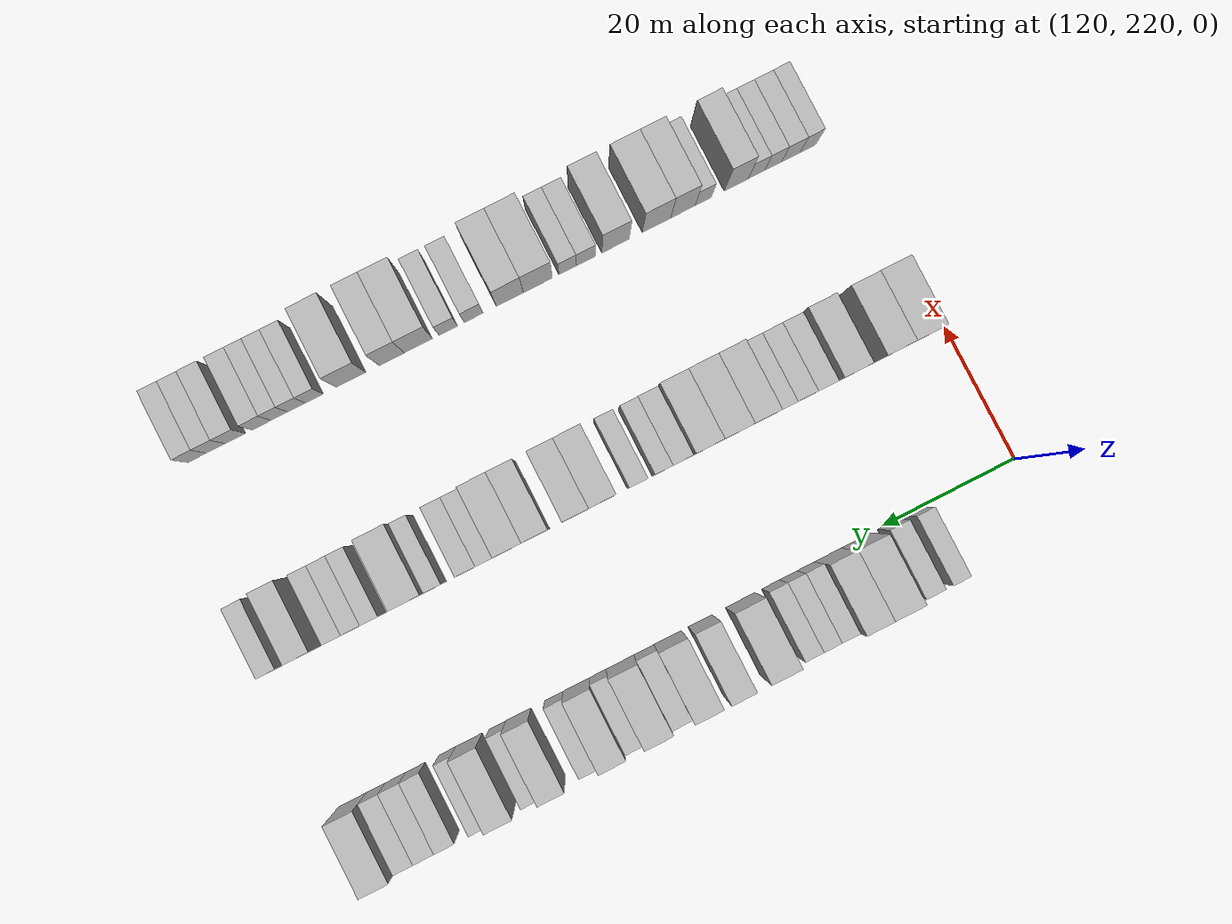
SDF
<sdf version="1.6">
 <world name="default">
  <model name="building_861">
   <static>1</static>
   <pose>115.0000 235.5898 0 0.000000 0.000000 0.000000</pose>
   <link name="link">
    <pose>0 0 3.00 0 0 0</pose>
    <collision name="collision"><geometry><box><size>10.0000 2.6294 6.0000</size></box></geometry></collision>
    <visual name="visual">
     <cast_shadows>0</cast_shadows>
     <geometry><box><size>10.0000 2.6294 6.0000</size></box></geometry>
     <material>
      <script>
       <uri>model://HANNAS_wall/materials/scripts</uri>
       <uri>model://HANNAS_wall/materials/textures</uri>
       <name>vrc/HANNAS_wall</name>
      </script>
     </material>
    </visual>
   </link>
  </model>
  <model name="building_862">
   <static>1</static>
   <pose>115.0000 239.3572 0 0.000000 0.000000 0.000000</pose>
   <link name="link">
    <pose>0 0 3.00 0 0 0</pose>
    <collision name="collision"><geometry><box><size>10.0000 2.9054 6.0000</size></box></geometry></collision>
    <visual name="visual">
     <cast_shadows>0</cast_shadows>
     <geometry><box><size>10.0000 2.9054 6.0000</size></box></geometry>
     <material>
      <script>
       <uri>model://HANNAS_wall/materials/scripts</uri>
       <uri>model://HANNAS_wall/materials/textures</uri>
       <name>vrc/HANNAS_wall</name>
      </script>
     </material>
    </visual>
   </link>
  </model>
  <model name="building_863">
   <static>1</static>
   <pose>115.0000 244.0393 0 0.000000 0.000000 0.000000</pose>
   <link name="link">
    <pose>0 0 4.50 0 0 0</pose>
    <collision name="collision"><geometry><box><size>10.0000 4.4588 9.0000</size></box></geometry></collision>
    <visual name="visual">
     <cast_shadows>0</cast_shadows>
     <geometry><box><size>10.0000 4.4588 9.0000</size></box></geometry>
     <material>
      <script>
       <uri>model://HANNAS_wall/materials/scripts</uri>
       <uri>model://HANNAS_wall/materials/textures</uri>
       <name>vrc/HANNAS_wall</name>
      </script>
     </material>
    </visual>
   </link>
  </model>
  <model name="building_864">
   <static>1</static>
   <pose>115.0000 248.2796 0 0.000000 0.000000 0.000000</pose>
   <link name="link">
    <pose>0 0 4.50 0 0 0</pose>
    <collision name="collision"><geometry><box><size>10.0000 4.0217 9.0000</size></box></geometry></collision>
    <visual name="visual">
     <cast_shadows>0</cast_shadows>
     <geometry><box><size>10.0000 4.0217 9.0000</size></box></geometry>
     <material>
      <script>
       <uri>model://HANNAS_wall/materials/scripts</uri>
       <uri>model://HANNAS_wall/materials/textures</uri>
       <name>vrc/HANNAS_wall</name>
      </script>
     </material>
    </visual>
   </link>
  </model>
  <model name="building_865">
   <static>1</static>
   <pose>115.0000 251.6192 0 0.000000 0.000000 0.000000</pose>
   <link name="link">
    <pose>0 0 3.00 0 0 0</pose>
    <collision name="collision"><geometry><box><size>10.0000 2.6576 6.0000</size></box></geometry></collision>
    <visual name="visual">
     <cast_shadows>0</cast_shadows>
     <geometry><box><size>10.0000 2.6576 6.0000</size></box></geometry>
     <material>
      <script>
       <uri>model://HANNAS_wall/materials/scripts</uri>
       <uri>model://HANNAS_wall/materials/textures</uri>
       <name>vrc/HANNAS_wall</name>
      </script>
     </material>
    </visual>
   </link>
  </model>
  <model name="building_866">
   <static>1</static>
   <pose>115.0000 254.2575 0 0.000000 0.000000 0.000000</pose>
   <link name="link">
    <pose>0 0 3.00 0 0 0</pose>
    <collision name="collision"><geometry><box><size>10.0000 2.6189 6.0000</size></box></geometry></collision>
    <visual name="visual">
     <cast_shadows>0</cast_shadows>
     <geometry><box><size>10.0000 2.6189 6.0000</size></box></geometry>
     <material>
      <script>
       <uri>model://HANNAS_wall/materials/scripts</uri>
       <uri>model://HANNAS_wall/materials/textures</uri>
       <name>vrc/HANNAS_wall</name>
      </script>
     </material>
    </visual>
   </link>
  </model>
  <model name="building_867">
   <static>1</static>
   <pose>115.0000 256.9109 0 0.000000 0.000000 0.000000</pose>
   <link name="link">
    <pose>0 0 3.00 0 0 0</pose>
    <collision name="collision"><geometry><box><size>10.0000 2.6879 6.0000</size></box></geometry></collision>
    <visual name="visual">
     <cast_shadows>0</cast_shadows>
     <geometry><box><size>10.0000 2.6879 6.0000</size></box></geometry>
     <material>
      <script>
       <uri>model://HANNAS_wall/materials/scripts</uri>
       <uri>model://HANNAS_wall/materials/textures</uri>
       <name>vrc/HANNAS_wall</name>
      </script>
     </material>
    </visual>
   </link>
  </model>
  <model name="building_868">
   <static>1</static>
   <pose>115.0000 261.4681 0 0.000000 0.000000 0.000000</pose>
   <link name="link">
    <pose>0 0 4.50 0 0 0</pose>
    <collision name="collision"><geometry><box><size>10.0000 4.4264 9.0000</size></box></geometry></collision>
    <visual name="visual">
     <cast_shadows>0</cast_shadows>
     <geometry><box><size>10.0000 4.4264 9.0000</size></box></geometry>
     <material>
      <script>
       <uri>model://HANNAS_wall/materials/scripts</uri>
       <uri>model://HANNAS_wall/materials/textures</uri>
       <name>vrc/HANNAS_wall</name>
      </script>
     </material>
    </visual>
   </link>
  </model>
  <model name="building_869">
   <static>1</static>
   <pose>115.0000 267.4914 0 0.000000 0.000000 0.000000</pose>
   <link name="link">
    <pose>0 0 4.50 0 0 0</pose>
    <collision name="collision"><geometry><box><size>10.0000 3.6204 9.0000</size></box></geometry></collision>
    <visual name="visual">
     <cast_shadows>0</cast_shadows>
     <geometry><box><size>10.0000 3.6204 9.0000</size></box></geometry>
     <material>
      <script>
       <uri>model://HANNAS_wall/materials/scripts</uri>
       <uri>model://HANNAS_wall/materials/textures</uri>
       <name>vrc/HANNAS_wall</name>
      </script>
     </material>
    </visual>
   </link>
  </model>
  <model name="building_870">
   <static>1</static>
   <pose>115.0000 272.3650 0 0.000000 0.000000 0.000000</pose>
   <link name="link">
    <pose>0 0 4.50 0 0 0</pose>
    <collision name="collision"><geometry><box><size>10.0000 4.1266 9.0000</size></box></geometry></collision>
    <visual name="visual">
     <cast_shadows>0</cast_shadows>
     <geometry><box><size>10.0000 4.1266 9.0000</size></box></geometry>
     <material>
      <script>
       <uri>model://HANNAS_wall/materials/scripts</uri>
       <uri>model://HANNAS_wall/materials/textures</uri>
       <name>vrc/HANNAS_wall</name>
      </script>
     </material>
    </visual>
   </link>
  </model>
  <model name="building_871">
   <static>1</static>
   <pose>115.0000 275.9131 0 0.000000 0.000000 0.000000</pose>
   <link name="link">
    <pose>0 0 3.00 0 0 0</pose>
    <collision name="collision"><geometry><box><size>10.0000 2.9697 6.0000</size></box></geometry></collision>
    <visual name="visual">
     <cast_shadows>0</cast_shadows>
     <geometry><box><size>10.0000 2.9697 6.0000</size></box></geometry>
     <material>
      <script>
       <uri>model://HANNAS_wall/materials/scripts</uri>
       <uri>model://HANNAS_wall/materials/textures</uri>
       <name>vrc/HANNAS_wall</name>
      </script>
     </material>
    </visual>
   </link>
  </model>
  <model name="building_872">
   <static>1</static>
   <pose>115.0000 279.4714 0 0.000000 0.000000 0.000000</pose>
   <link name="link">
    <pose>0 0 4.50 0 0 0</pose>
    <collision name="collision"><geometry><box><size>10.0000 4.1468 9.0000</size></box></geometry></collision>
    <visual name="visual">
     <cast_shadows>0</cast_shadows>
     <geometry><box><size>10.0000 4.1468 9.0000</size></box></geometry>
     <material>
      <script>
       <uri>model://HANNAS_wall/materials/scripts</uri>
       <uri>model://HANNAS_wall/materials/textures</uri>
       <name>vrc/HANNAS_wall</name>
      </script>
     </material>
    </visual>
   </link>
  </model>
  <model name="building_873">
   <static>1</static>
   <pose>115.0000 282.8280 0 0.000000 0.000000 0.000000</pose>
   <link name="link">
    <pose>0 0 3.00 0 0 0</pose>
    <collision name="collision"><geometry><box><size>10.0000 2.5663 6.0000</size></box></geometry></collision>
    <visual name="visual">
     <cast_shadows>0</cast_shadows>
     <geometry><box><size>10.0000 2.5663 6.0000</size></box></geometry>
     <material>
      <script>
       <uri>model://HANNAS_wall/materials/scripts</uri>
       <uri>model://HANNAS_wall/materials/textures</uri>
       <name>vrc/HANNAS_wall</name>
      </script>
     </material>
    </visual>
   </link>
  </model>
  <model name="building_874">
   <static>1</static>
   <pose>115.0000 286.0562 0 0.000000 0.000000 0.000000</pose>
   <link name="link">
    <pose>0 0 4.50 0 0 0</pose>
    <collision name="collision"><geometry><box><size>10.0000 3.8902 9.0000</size></box></geometry></collision>
    <visual name="visual">
     <cast_shadows>0</cast_shadows>
     <geometry><box><size>10.0000 3.8902 9.0000</size></box></geometry>
     <material>
      <script>
       <uri>model://HANNAS_wall/materials/scripts</uri>
       <uri>model://HANNAS_wall/materials/textures</uri>
       <name>vrc/HANNAS_wall</name>
      </script>
     </material>
    </visual>
   </link>
  </model>
  <model name="building_875">
   <static>1</static>
   <pose>115.0000 289.3588 0 0.000000 0.000000 0.000000</pose>
   <link name="link">
    <pose>0 0 3.00 0 0 0</pose>
    <collision name="collision"><geometry><box><size>10.0000 2.7150 6.0000</size></box></geometry></collision>
    <visual name="visual">
     <cast_shadows>0</cast_shadows>
     <geometry><box><size>10.0000 2.7150 6.0000</size></box></geometry>
     <material>
      <script>
       <uri>model://HANNAS_wall/materials/scripts</uri>
       <uri>model://HANNAS_wall/materials/textures</uri>
       <name>vrc/HANNAS_wall</name>
      </script>
     </material>
    </visual>
   </link>
  </model>
  <model name="building_876">
   <static>1</static>
   <pose>115.0000 294.6109 0 0.000000 0.000000 0.000000</pose>
   <link name="link">
    <pose>0 0 4.50 0 0 0</pose>
    <collision name="collision"><geometry><box><size>10.0000 3.7893 9.0000</size></box></geometry></collision>
    <visual name="visual">
     <cast_shadows>0</cast_shadows>
     <geometry><box><size>10.0000 3.7893 9.0000</size></box></geometry>
     <material>
      <script>
       <uri>model://HANNAS_wall/materials/scripts</uri>
       <uri>model://HANNAS_wall/materials/textures</uri>
       <name>vrc/HANNAS_wall</name>
      </script>
     </material>
    </visual>
   </link>
  </model>
  <model name="building_877">
   <static>1</static>
   <pose>115.0000 297.7498 0 0.000000 0.000000 0.000000</pose>
   <link name="link">
    <pose>0 0 3.00 0 0 0</pose>
    <collision name="collision"><geometry><box><size>10.0000 2.4884 6.0000</size></box></geometry></collision>
    <visual name="visual">
     <cast_shadows>0</cast_shadows>
     <geometry><box><size>10.0000 2.4884 6.0000</size></box></geometry>
     <material>
      <script>
       <uri>model://HANNAS_wall/materials/scripts</uri>
       <uri>model://HANNAS_wall/materials/textures</uri>
       <name>vrc/HANNAS_wall</name>
      </script>
     </material>
    </visual>
   </link>
  </model>
  <model name="building_878">
   <static>1</static>
   <pose>115.0000 301.9731 0 0.000000 0.000000 0.000000</pose>
   <link name="link">
    <pose>0 0 4.50 0 0 0</pose>
    <collision name="collision"><geometry><box><size>10.0000 3.9583 9.0000</size></box></geometry></collision>
    <visual name="visual">
     <cast_shadows>0</cast_shadows>
     <geometry><box><size>10.0000 3.9583 9.0000</size></box></geometry>
     <material>
      <script>
       <uri>model://HANNAS_wall/materials/scripts</uri>
       <uri>model://HANNAS_wall/materials/textures</uri>
       <name>vrc/HANNAS_wall</name>
      </script>
     </material>
    </visual>
   </link>
  </model>
  <model name="building_879">
   <static>1</static>
   <pose>115.0000 305.1873 0 0.000000 0.000000 0.000000</pose>
   <link name="link">
    <pose>0 0 3.00 0 0 0</pose>
    <collision name="collision"><geometry><box><size>10.0000 2.4700 6.0000</size></box></geometry></collision>
    <visual name="visual">
     <cast_shadows>0</cast_shadows>
     <geometry><box><size>10.0000 2.4700 6.0000</size></box></geometry>
     <material>
      <script>
       <uri>model://HANNAS_wall/materials/scripts</uri>
       <uri>model://HANNAS_wall/materials/textures</uri>
       <name>vrc/HANNAS_wall</name>
      </script>
     </material>
    </visual>
   </link>
  </model>
  <model name="building_880">
   <static>1</static>
   <pose>115.0000 309.8550 0 0.000000 0.000000 0.000000</pose>
   <link name="link">
    <pose>0 0 3.00 0 0 0</pose>
    <collision name="collision"><geometry><box><size>10.0000 2.8654 6.0000</size></box></geometry></collision>
    <visual name="visual">
     <cast_shadows>0</cast_shadows>
     <geometry><box><size>10.0000 2.8654 6.0000</size></box></geometry>
     <material>
      <script>
       <uri>model://HANNAS_wall/materials/scripts</uri>
       <uri>model://HANNAS_wall/materials/textures</uri>
       <name>vrc/HANNAS_wall</name>
      </script>
     </material>
    </visual>
   </link>
  </model>
  <model name="building_881">
   <static>1</static>
   <pose>115.0000 312.7744 0 0.000000 0.000000 0.000000</pose>
   <link name="link">
    <pose>0 0 3.00 0 0 0</pose>
    <collision name="collision"><geometry><box><size>10.0000 2.9734 6.0000</size></box></geometry></collision>
    <visual name="visual">
     <cast_shadows>0</cast_shadows>
     <geometry><box><size>10.0000 2.9734 6.0000</size></box></geometry>
     <material>
      <script>
       <uri>model://HANNAS_wall/materials/scripts</uri>
       <uri>model://HANNAS_wall/materials/textures</uri>
       <name>vrc/HANNAS_wall</name>
      </script>
     </material>
    </visual>
   </link>
  </model>
  <model name="building_882">
   <static>1</static>
   <pose>115.0000 315.6811 0 0.000000 0.000000 0.000000</pose>
   <link name="link">
    <pose>0 0 3.00 0 0 0</pose>
    <collision name="collision"><geometry><box><size>10.0000 2.8400 6.0000</size></box></geometry></collision>
    <visual name="visual">
     <cast_shadows>0</cast_shadows>
     <geometry><box><size>10.0000 2.8400 6.0000</size></box></geometry>
     <material>
      <script>
       <uri>model://HANNAS_wall/materials/scripts</uri>
       <uri>model://HANNAS_wall/materials/textures</uri>
       <name>vrc/HANNAS_wall</name>
      </script>
     </material>
    </visual>
   </link>
  </model>
  <model name="building_883">
   <static>1</static>
   <pose>115.0000 319.1806 0 0.000000 0.000000 0.000000</pose>
   <link name="link">
    <pose>0 0 4.50 0 0 0</pose>
    <collision name="collision"><geometry><box><size>10.0000 4.1591 9.0000</size></box></geometry></collision>
    <visual name="visual">
     <cast_shadows>0</cast_shadows>
     <geometry><box><size>10.0000 4.1591 9.0000</size></box></geometry>
     <material>
      <script>
       <uri>model://HANNAS_wall/materials/scripts</uri>
       <uri>model://HANNAS_wall/materials/textures</uri>
       <name>vrc/HANNAS_wall</name>
      </script>
     </material>
    </visual>
   </link>
  </model>
  <model name="building_1099">
   <static>1</static>
   <pose>145.0000 225.0670 0 0.000000 0.000000 0.000000</pose>
   <link name="link">
    <pose>0 0 4.50 0 0 0</pose>
    <collision name="collision"><geometry><box><size>10.0000 4.4660 9.0000</size></box></geometry></collision>
    <visual name="visual">
     <cast_shadows>0</cast_shadows>
     <geometry><box><size>10.0000 4.4660 9.0000</size></box></geometry>
     <material>
      <script>
       <uri>model://HANNAS_wall/materials/scripts</uri>
       <uri>model://HANNAS_wall/materials/textures</uri>
       <name>vrc/HANNAS_wall</name>
      </script>
     </material>
    </visual>
   </link>
  </model>
  <model name="building_1100">
   <static>1</static>
   <pose>145.0000 229.4020 0 0.000000 0.000000 0.000000</pose>
   <link name="link">
    <pose>0 0 4.50 0 0 0</pose>
    <collision name="collision"><geometry><box><size>10.0000 4.2040 9.0000</size></box></geometry></collision>
    <visual name="visual">
     <cast_shadows>0</cast_shadows>
     <geometry><box><size>10.0000 4.2040 9.0000</size></box></geometry>
     <material>
      <script>
       <uri>model://HANNAS_wall/materials/scripts</uri>
       <uri>model://HANNAS_wall/materials/textures</uri>
       <name>vrc/HANNAS_wall</name>
      </script>
     </material>
    </visual>
   </link>
  </model>
  <model name="building_1101">
   <static>1</static>
   <pose>145.0000 235.5817 0 0.000000 0.000000 0.000000</pose>
   <link name="link">
    <pose>0 0 4.50 0 0 0</pose>
    <collision name="collision"><geometry><box><size>10.0000 4.1554 9.0000</size></box></geometry></collision>
    <visual name="visual">
     <cast_shadows>0</cast_shadows>
     <geometry><box><size>10.0000 4.1554 9.0000</size></box></geometry>
     <material>
      <script>
       <uri>model://HANNAS_wall/materials/scripts</uri>
       <uri>model://HANNAS_wall/materials/textures</uri>
       <name>vrc/HANNAS_wall</name>
      </script>
     </material>
    </visual>
   </link>
  </model>
  <model name="building_1102">
   <static>1</static>
   <pose>145.0000 239.1571 0 0.000000 0.000000 0.000000</pose>
   <link name="link">
    <pose>0 0 3.00 0 0 0</pose>
    <collision name="collision"><geometry><box><size>10.0000 2.9955 6.0000</size></box></geometry></collision>
    <visual name="visual">
     <cast_shadows>0</cast_shadows>
     <geometry><box><size>10.0000 2.9955 6.0000</size></box></geometry>
     <material>
      <script>
       <uri>model://HANNAS_wall/materials/scripts</uri>
       <uri>model://HANNAS_wall/materials/textures</uri>
       <name>vrc/HANNAS_wall</name>
      </script>
     </material>
    </visual>
   </link>
  </model>
  <model name="building_1103">
   <static>1</static>
   <pose>145.0000 242.1380 0 0.000000 0.000000 0.000000</pose>
   <link name="link">
    <pose>0 0 3.00 0 0 0</pose>
    <collision name="collision"><geometry><box><size>10.0000 2.9663 6.0000</size></box></geometry></collision>
    <visual name="visual">
     <cast_shadows>0</cast_shadows>
     <geometry><box><size>10.0000 2.9663 6.0000</size></box></geometry>
     <material>
      <script>
       <uri>model://HANNAS_wall/materials/scripts</uri>
       <uri>model://HANNAS_wall/materials/textures</uri>
       <name>vrc/HANNAS_wall</name>
      </script>
     </material>
    </visual>
   </link>
  </model>
  <model name="building_1104">
   <static>1</static>
   <pose>145.0000 245.0685 0 0.000000 0.000000 0.000000</pose>
   <link name="link">
    <pose>0 0 3.00 0 0 0</pose>
    <collision name="collision"><geometry><box><size>10.0000 2.8949 6.0000</size></box></geometry></collision>
    <visual name="visual">
     <cast_shadows>0</cast_shadows>
     <geometry><box><size>10.0000 2.8949 6.0000</size></box></geometry>
     <material>
      <script>
       <uri>model://HANNAS_wall/materials/scripts</uri>
       <uri>model://HANNAS_wall/materials/textures</uri>
       <name>vrc/HANNAS_wall</name>
      </script>
     </material>
    </visual>
   </link>
  </model>
  <model name="building_1105">
   <static>1</static>
   <pose>145.0000 248.4607 0 0.000000 0.000000 0.000000</pose>
   <link name="link">
    <pose>0 0 4.50 0 0 0</pose>
    <collision name="collision"><geometry><box><size>10.0000 3.8894 9.0000</size></box></geometry></collision>
    <visual name="visual">
     <cast_shadows>0</cast_shadows>
     <geometry><box><size>10.0000 3.8894 9.0000</size></box></geometry>
     <material>
      <script>
       <uri>model://HANNAS_wall/materials/scripts</uri>
       <uri>model://HANNAS_wall/materials/textures</uri>
       <name>vrc/HANNAS_wall</name>
      </script>
     </material>
    </visual>
   </link>
  </model>
  <model name="building_1106">
   <static>1</static>
   <pose>145.0000 252.5409 0 0.000000 0.000000 0.000000</pose>
   <link name="link">
    <pose>0 0 4.50 0 0 0</pose>
    <collision name="collision"><geometry><box><size>10.0000 4.2711 9.0000</size></box></geometry></collision>
    <visual name="visual">
     <cast_shadows>0</cast_shadows>
     <geometry><box><size>10.0000 4.2711 9.0000</size></box></geometry>
     <material>
      <script>
       <uri>model://HANNAS_wall/materials/scripts</uri>
       <uri>model://HANNAS_wall/materials/textures</uri>
       <name>vrc/HANNAS_wall</name>
      </script>
     </material>
    </visual>
   </link>
  </model>
  <model name="building_1107">
   <static>1</static>
   <pose>145.0000 256.7137 0 0.000000 0.000000 0.000000</pose>
   <link name="link">
    <pose>0 0 4.50 0 0 0</pose>
    <collision name="collision"><geometry><box><size>10.0000 4.0745 9.0000</size></box></geometry></collision>
    <visual name="visual">
     <cast_shadows>0</cast_shadows>
     <geometry><box><size>10.0000 4.0745 9.0000</size></box></geometry>
     <material>
      <script>
       <uri>model://HANNAS_wall/materials/scripts</uri>
       <uri>model://HANNAS_wall/materials/textures</uri>
       <name>vrc/HANNAS_wall</name>
      </script>
     </material>
    </visual>
   </link>
  </model>
  <model name="building_1108">
   <static>1</static>
   <pose>145.0000 260.2455 0 0.000000 0.000000 0.000000</pose>
   <link name="link">
    <pose>0 0 3.00 0 0 0</pose>
    <collision name="collision"><geometry><box><size>10.0000 2.9890 6.0000</size></box></geometry></collision>
    <visual name="visual">
     <cast_shadows>0</cast_shadows>
     <geometry><box><size>10.0000 2.9890 6.0000</size></box></geometry>
     <material>
      <script>
       <uri>model://HANNAS_wall/materials/scripts</uri>
       <uri>model://HANNAS_wall/materials/textures</uri>
       <name>vrc/HANNAS_wall</name>
      </script>
     </material>
    </visual>
   </link>
  </model>
  <model name="building_1109">
   <static>1</static>
   <pose>145.0000 263.0469 0 0.000000 0.000000 0.000000</pose>
   <link name="link">
    <pose>0 0 3.00 0 0 0</pose>
    <collision name="collision"><geometry><box><size>10.0000 2.6138 6.0000</size></box></geometry></collision>
    <visual name="visual">
     <cast_shadows>0</cast_shadows>
     <geometry><box><size>10.0000 2.6138 6.0000</size></box></geometry>
     <material>
      <script>
       <uri>model://HANNAS_wall/materials/scripts</uri>
       <uri>model://HANNAS_wall/materials/textures</uri>
       <name>vrc/HANNAS_wall</name>
      </script>
     </material>
    </visual>
   </link>
  </model>
  <model name="building_1110">
   <static>1</static>
   <pose>145.0000 266.7103 0 0.000000 0.000000 0.000000</pose>
   <link name="link">
    <pose>0 0 3.00 0 0 0</pose>
    <collision name="collision"><geometry><box><size>10.0000 2.7130 6.0000</size></box></geometry></collision>
    <visual name="visual">
     <cast_shadows>0</cast_shadows>
     <geometry><box><size>10.0000 2.7130 6.0000</size></box></geometry>
     <material>
      <script>
       <uri>model://HANNAS_wall/materials/scripts</uri>
       <uri>model://HANNAS_wall/materials/textures</uri>
       <name>vrc/HANNAS_wall</name>
      </script>
     </material>
    </visual>
   </link>
  </model>
  <model name="building_1111">
   <static>1</static>
   <pose>145.0000 272.0179 0 0.000000 0.000000 0.000000</pose>
   <link name="link">
    <pose>0 0 4.50 0 0 0</pose>
    <collision name="collision"><geometry><box><size>10.0000 3.9020 9.0000</size></box></geometry></collision>
    <visual name="visual">
     <cast_shadows>0</cast_shadows>
     <geometry><box><size>10.0000 3.9020 9.0000</size></box></geometry>
     <material>
      <script>
       <uri>model://HANNAS_wall/materials/scripts</uri>
       <uri>model://HANNAS_wall/materials/textures</uri>
       <name>vrc/HANNAS_wall</name>
      </script>
     </material>
    </visual>
   </link>
  </model>
  <model name="building_1112">
   <static>1</static>
   <pose>145.0000 275.8490 0 0.000000 0.000000 0.000000</pose>
   <link name="link">
    <pose>0 0 4.50 0 0 0</pose>
    <collision name="collision"><geometry><box><size>10.0000 3.7603 9.0000</size></box></geometry></collision>
    <visual name="visual">
     <cast_shadows>0</cast_shadows>
     <geometry><box><size>10.0000 3.7603 9.0000</size></box></geometry>
     <material>
      <script>
       <uri>model://HANNAS_wall/materials/scripts</uri>
       <uri>model://HANNAS_wall/materials/textures</uri>
       <name>vrc/HANNAS_wall</name>
      </script>
     </material>
    </visual>
   </link>
  </model>
  <model name="building_1113">
   <static>1</static>
   <pose>145.0000 281.5870 0 0.000000 0.000000 0.000000</pose>
   <link name="link">
    <pose>0 0 4.50 0 0 0</pose>
    <collision name="collision"><geometry><box><size>10.0000 3.7157 9.0000</size></box></geometry></collision>
    <visual name="visual">
     <cast_shadows>0</cast_shadows>
     <geometry><box><size>10.0000 3.7157 9.0000</size></box></geometry>
     <material>
      <script>
       <uri>model://HANNAS_wall/materials/scripts</uri>
       <uri>model://HANNAS_wall/materials/textures</uri>
       <name>vrc/HANNAS_wall</name>
      </script>
     </material>
    </visual>
   </link>
  </model>
  <model name="building_1114">
   <static>1</static>
   <pose>145.0000 285.4983 0 0.000000 0.000000 0.000000</pose>
   <link name="link">
    <pose>0 0 4.50 0 0 0</pose>
    <collision name="collision"><geometry><box><size>10.0000 4.1068 9.0000</size></box></geometry></collision>
    <visual name="visual">
     <cast_shadows>0</cast_shadows>
     <geometry><box><size>10.0000 4.1068 9.0000</size></box></geometry>
     <material>
      <script>
       <uri>model://HANNAS_wall/materials/scripts</uri>
       <uri>model://HANNAS_wall/materials/textures</uri>
       <name>vrc/HANNAS_wall</name>
      </script>
     </material>
    </visual>
   </link>
  </model>
  <model name="building_1115">
   <static>1</static>
   <pose>145.0000 288.9166 0 0.000000 0.000000 0.000000</pose>
   <link name="link">
    <pose>0 0 3.00 0 0 0</pose>
    <collision name="collision"><geometry><box><size>10.0000 2.7299 6.0000</size></box></geometry></collision>
    <visual name="visual">
     <cast_shadows>0</cast_shadows>
     <geometry><box><size>10.0000 2.7299 6.0000</size></box></geometry>
     <material>
      <script>
       <uri>model://HANNAS_wall/materials/scripts</uri>
       <uri>model://HANNAS_wall/materials/textures</uri>
       <name>vrc/HANNAS_wall</name>
      </script>
     </material>
    </visual>
   </link>
  </model>
  <model name="building_1116">
   <static>1</static>
   <pose>145.0000 291.7416 0 0.000000 0.000000 0.000000</pose>
   <link name="link">
    <pose>0 0 3.00 0 0 0</pose>
    <collision name="collision"><geometry><box><size>10.0000 2.9203 6.0000</size></box></geometry></collision>
    <visual name="visual">
     <cast_shadows>0</cast_shadows>
     <geometry><box><size>10.0000 2.9203 6.0000</size></box></geometry>
     <material>
      <script>
       <uri>model://HANNAS_wall/materials/scripts</uri>
       <uri>model://HANNAS_wall/materials/textures</uri>
       <name>vrc/HANNAS_wall</name>
      </script>
     </material>
    </visual>
   </link>
  </model>
  <model name="building_1117">
   <static>1</static>
   <pose>145.0000 296.4616 0 0.000000 0.000000 0.000000</pose>
   <link name="link">
    <pose>0 0 3.00 0 0 0</pose>
    <collision name="collision"><geometry><box><size>10.0000 2.5197 6.0000</size></box></geometry></collision>
    <visual name="visual">
     <cast_shadows>0</cast_shadows>
     <geometry><box><size>10.0000 2.5197 6.0000</size></box></geometry>
     <material>
      <script>
       <uri>model://HANNAS_wall/materials/scripts</uri>
       <uri>model://HANNAS_wall/materials/textures</uri>
       <name>vrc/HANNAS_wall</name>
      </script>
     </material>
    </visual>
   </link>
  </model>
  <model name="building_1118">
   <static>1</static>
   <pose>145.0000 299.9593 0 0.000000 0.000000 0.000000</pose>
   <link name="link">
    <pose>0 0 4.50 0 0 0</pose>
    <collision name="collision"><geometry><box><size>10.0000 4.4757 9.0000</size></box></geometry></collision>
    <visual name="visual">
     <cast_shadows>0</cast_shadows>
     <geometry><box><size>10.0000 4.4757 9.0000</size></box></geometry>
     <material>
      <script>
       <uri>model://HANNAS_wall/materials/scripts</uri>
       <uri>model://HANNAS_wall/materials/textures</uri>
       <name>vrc/HANNAS_wall</name>
      </script>
     </material>
    </visual>
   </link>
  </model>
  <model name="building_1119">
   <static>1</static>
   <pose>145.0000 305.4799 0 0.000000 0.000000 0.000000</pose>
   <link name="link">
    <pose>0 0 3.00 0 0 0</pose>
    <collision name="collision"><geometry><box><size>10.0000 2.5654 6.0000</size></box></geometry></collision>
    <visual name="visual">
     <cast_shadows>0</cast_shadows>
     <geometry><box><size>10.0000 2.5654 6.0000</size></box></geometry>
     <material>
      <script>
       <uri>model://HANNAS_wall/materials/scripts</uri>
       <uri>model://HANNAS_wall/materials/textures</uri>
       <name>vrc/HANNAS_wall</name>
      </script>
     </material>
    </visual>
   </link>
  </model>
  <model name="building_1120">
   <static>1</static>
   <pose>145.0000 308.1287 0 0.000000 0.000000 0.000000</pose>
   <link name="link">
    <pose>0 0 3.00 0 0 0</pose>
    <collision name="collision"><geometry><box><size>10.0000 2.7322 6.0000</size></box></geometry></collision>
    <visual name="visual">
     <cast_shadows>0</cast_shadows>
     <geometry><box><size>10.0000 2.7322 6.0000</size></box></geometry>
     <material>
      <script>
       <uri>model://HANNAS_wall/materials/scripts</uri>
       <uri>model://HANNAS_wall/materials/textures</uri>
       <name>vrc/HANNAS_wall</name>
      </script>
     </material>
    </visual>
   </link>
  </model>
  <model name="building_1121">
   <static>1</static>
   <pose>145.0000 310.8626 0 0.000000 0.000000 0.000000</pose>
   <link name="link">
    <pose>0 0 3.00 0 0 0</pose>
    <collision name="collision"><geometry><box><size>10.0000 2.7356 6.0000</size></box></geometry></collision>
    <visual name="visual">
     <cast_shadows>0</cast_shadows>
     <geometry><box><size>10.0000 2.7356 6.0000</size></box></geometry>
     <material>
      <script>
       <uri>model://HANNAS_wall/materials/scripts</uri>
       <uri>model://HANNAS_wall/materials/textures</uri>
       <name>vrc/HANNAS_wall</name>
      </script>
     </material>
    </visual>
   </link>
  </model>
  <model name="building_1122">
   <static>1</static>
   <pose>145.0000 315.0537 0 0.000000 0.000000 0.000000</pose>
   <link name="link">
    <pose>0 0 4.50 0 0 0</pose>
    <collision name="collision"><geometry><box><size>10.0000 3.6466 9.0000</size></box></geometry></collision>
    <visual name="visual">
     <cast_shadows>0</cast_shadows>
     <geometry><box><size>10.0000 3.6466 9.0000</size></box></geometry>
     <material>
      <script>
       <uri>model://HANNAS_wall/materials/scripts</uri>
       <uri>model://HANNAS_wall/materials/textures</uri>
       <name>vrc/HANNAS_wall</name>
      </script>
     </material>
    </visual>
   </link>
  </model>
  <model name="building_1123">
   <static>1</static>
   <pose>145.0000 320.2420 0 0.000000 0.000000 0.000000</pose>
   <link name="link">
    <pose>0 0 3.00 0 0 0</pose>
    <collision name="collision"><geometry><box><size>10.0000 2.7299 6.0000</size></box></geometry></collision>
    <visual name="visual">
     <cast_shadows>0</cast_shadows>
     <geometry><box><size>10.0000 2.7299 6.0000</size></box></geometry>
     <material>
      <script>
       <uri>model://HANNAS_wall/materials/scripts</uri>
       <uri>model://HANNAS_wall/materials/textures</uri>
       <name>vrc/HANNAS_wall</name>
      </script>
     </material>
    </visual>
   </link>
  </model>
  <model name="building_1328">
   <static>1</static>
   <pose>175.0000 225.1746 0 0.000000 0.000000 0.000000</pose>
   <link name="link">
    <pose>0 0 3.00 0 0 0</pose>
    <collision name="collision"><geometry><box><size>10.0000 2.4365 6.0000</size></box></geometry></collision>
    <visual name="visual">
     <cast_shadows>0</cast_shadows>
     <geometry><box><size>10.0000 2.4365 6.0000</size></box></geometry>
     <material>
      <script>
       <uri>model://HANNAS_wall/materials/scripts</uri>
       <uri>model://HANNAS_wall/materials/textures</uri>
       <name>vrc/HANNAS_wall</name>
      </script>
     </material>
    </visual>
   </link>
  </model>
  <model name="building_1329">
   <static>1</static>
   <pose>175.0000 227.7968 0 0.000000 0.000000 0.000000</pose>
   <link name="link">
    <pose>0 0 3.00 0 0 0</pose>
    <collision name="collision"><geometry><box><size>10.0000 2.8079 6.0000</size></box></geometry></collision>
    <visual name="visual">
     <cast_shadows>0</cast_shadows>
     <geometry><box><size>10.0000 2.8079 6.0000</size></box></geometry>
     <material>
      <script>
       <uri>model://HANNAS_wall/materials/scripts</uri>
       <uri>model://HANNAS_wall/materials/textures</uri>
       <name>vrc/HANNAS_wall</name>
      </script>
     </material>
    </visual>
   </link>
  </model>
  <model name="building_1330">
   <static>1</static>
   <pose>175.0000 230.4937 0 0.000000 0.000000 0.000000</pose>
   <link name="link">
    <pose>0 0 3.00 0 0 0</pose>
    <collision name="collision"><geometry><box><size>10.0000 2.5859 6.0000</size></box></geometry></collision>
    <visual name="visual">
     <cast_shadows>0</cast_shadows>
     <geometry><box><size>10.0000 2.5859 6.0000</size></box></geometry>
     <material>
      <script>
       <uri>model://HANNAS_wall/materials/scripts</uri>
       <uri>model://HANNAS_wall/materials/textures</uri>
       <name>vrc/HANNAS_wall</name>
      </script>
     </material>
    </visual>
   </link>
  </model>
  <model name="building_1331">
   <static>1</static>
   <pose>175.0000 233.0450 0 0.000000 0.000000 0.000000</pose>
   <link name="link">
    <pose>0 0 3.00 0 0 0</pose>
    <collision name="collision"><geometry><box><size>10.0000 2.5166 6.0000</size></box></geometry></collision>
    <visual name="visual">
     <cast_shadows>0</cast_shadows>
     <geometry><box><size>10.0000 2.5166 6.0000</size></box></geometry>
     <material>
      <script>
       <uri>model://HANNAS_wall/materials/scripts</uri>
       <uri>model://HANNAS_wall/materials/textures</uri>
       <name>vrc/HANNAS_wall</name>
      </script>
     </material>
    </visual>
   </link>
  </model>
  <model name="building_1332">
   <static>1</static>
   <pose>175.0000 236.1241 0 0.000000 0.000000 0.000000</pose>
   <link name="link">
    <pose>0 0 4.50 0 0 0</pose>
    <collision name="collision"><geometry><box><size>10.0000 3.6417 9.0000</size></box></geometry></collision>
    <visual name="visual">
     <cast_shadows>0</cast_shadows>
     <geometry><box><size>10.0000 3.6417 9.0000</size></box></geometry>
     <material>
      <script>
       <uri>model://HANNAS_wall/materials/scripts</uri>
       <uri>model://HANNAS_wall/materials/textures</uri>
       <name>vrc/HANNAS_wall</name>
      </script>
     </material>
    </visual>
   </link>
  </model>
  <model name="building_1333">
   <static>1</static>
   <pose>175.0000 241.1767 0 0.000000 0.000000 0.000000</pose>
   <link name="link">
    <pose>0 0 3.00 0 0 0</pose>
    <collision name="collision"><geometry><box><size>10.0000 2.4635 6.0000</size></box></geometry></collision>
    <visual name="visual">
     <cast_shadows>0</cast_shadows>
     <geometry><box><size>10.0000 2.4635 6.0000</size></box></geometry>
     <material>
      <script>
       <uri>model://HANNAS_wall/materials/scripts</uri>
       <uri>model://HANNAS_wall/materials/textures</uri>
       <name>vrc/HANNAS_wall</name>
      </script>
     </material>
    </visual>
   </link>
  </model>
  <model name="building_1334">
   <static>1</static>
   <pose>175.0000 244.2647 0 0.000000 0.000000 0.000000</pose>
   <link name="link">
    <pose>0 0 4.50 0 0 0</pose>
    <collision name="collision"><geometry><box><size>10.0000 3.7125 9.0000</size></box></geometry></collision>
    <visual name="visual">
     <cast_shadows>0</cast_shadows>
     <geometry><box><size>10.0000 3.7125 9.0000</size></box></geometry>
     <material>
      <script>
       <uri>model://HANNAS_wall/materials/scripts</uri>
       <uri>model://HANNAS_wall/materials/textures</uri>
       <name>vrc/HANNAS_wall</name>
      </script>
     </material>
    </visual>
   </link>
  </model>
  <model name="building_1335">
   <static>1</static>
   <pose>175.0000 248.2808 0 0.000000 0.000000 0.000000</pose>
   <link name="link">
    <pose>0 0 4.50 0 0 0</pose>
    <collision name="collision"><geometry><box><size>10.0000 4.3198 9.0000</size></box></geometry></collision>
    <visual name="visual">
     <cast_shadows>0</cast_shadows>
     <geometry><box><size>10.0000 4.3198 9.0000</size></box></geometry>
     <material>
      <script>
       <uri>model://HANNAS_wall/materials/scripts</uri>
       <uri>model://HANNAS_wall/materials/textures</uri>
       <name>vrc/HANNAS_wall</name>
      </script>
     </material>
    </visual>
   </link>
  </model>
  <model name="building_1336">
   <static>1</static>
   <pose>175.0000 254.5161 0 0.000000 0.000000 0.000000</pose>
   <link name="link">
    <pose>0 0 4.50 0 0 0</pose>
    <collision name="collision"><geometry><box><size>10.0000 4.1507 9.0000</size></box></geometry></collision>
    <visual name="visual">
     <cast_shadows>0</cast_shadows>
     <geometry><box><size>10.0000 4.1507 9.0000</size></box></geometry>
     <material>
      <script>
       <uri>model://HANNAS_wall/materials/scripts</uri>
       <uri>model://HANNAS_wall/materials/textures</uri>
       <name>vrc/HANNAS_wall</name>
      </script>
     </material>
    </visual>
   </link>
  </model>
  <model name="building_1337">
   <static>1</static>
   <pose>175.0000 259.0170 0 0.000000 0.000000 0.000000</pose>
   <link name="link">
    <pose>0 0 3.00 0 0 0</pose>
    <collision name="collision"><geometry><box><size>10.0000 2.8512 6.0000</size></box></geometry></collision>
    <visual name="visual">
     <cast_shadows>0</cast_shadows>
     <geometry><box><size>10.0000 2.8512 6.0000</size></box></geometry>
     <material>
      <script>
       <uri>model://HANNAS_wall/materials/scripts</uri>
       <uri>model://HANNAS_wall/materials/textures</uri>
       <name>vrc/HANNAS_wall</name>
      </script>
     </material>
    </visual>
   </link>
  </model>
  <model name="building_1338">
   <static>1</static>
   <pose>175.0000 261.7713 0 0.000000 0.000000 0.000000</pose>
   <link name="link">
    <pose>0 0 3.00 0 0 0</pose>
    <collision name="collision"><geometry><box><size>10.0000 2.6573 6.0000</size></box></geometry></collision>
    <visual name="visual">
     <cast_shadows>0</cast_shadows>
     <geometry><box><size>10.0000 2.6573 6.0000</size></box></geometry>
     <material>
      <script>
       <uri>model://HANNAS_wall/materials/scripts</uri>
       <uri>model://HANNAS_wall/materials/textures</uri>
       <name>vrc/HANNAS_wall</name>
      </script>
     </material>
    </visual>
   </link>
  </model>
  <model name="building_1339">
   <static>1</static>
   <pose>175.0000 266.2935 0 0.000000 0.000000 0.000000</pose>
   <link name="link">
    <pose>0 0 4.50 0 0 0</pose>
    <collision name="collision"><geometry><box><size>10.0000 4.3873 9.0000</size></box></geometry></collision>
    <visual name="visual">
     <cast_shadows>0</cast_shadows>
     <geometry><box><size>10.0000 4.3873 9.0000</size></box></geometry>
     <material>
      <script>
       <uri>model://HANNAS_wall/materials/scripts</uri>
       <uri>model://HANNAS_wall/materials/textures</uri>
       <name>vrc/HANNAS_wall</name>
      </script>
     </material>
    </visual>
   </link>
  </model>
  <model name="building_1340">
   <static>1</static>
   <pose>175.0000 270.5197 0 0.000000 0.000000 0.000000</pose>
   <link name="link">
    <pose>0 0 4.50 0 0 0</pose>
    <collision name="collision"><geometry><box><size>10.0000 4.0650 9.0000</size></box></geometry></collision>
    <visual name="visual">
     <cast_shadows>0</cast_shadows>
     <geometry><box><size>10.0000 4.0650 9.0000</size></box></geometry>
     <material>
      <script>
       <uri>model://HANNAS_wall/materials/scripts</uri>
       <uri>model://HANNAS_wall/materials/textures</uri>
       <name>vrc/HANNAS_wall</name>
      </script>
     </material>
    </visual>
   </link>
  </model>
  <model name="building_1341">
   <static>1</static>
   <pose>175.0000 275.9729 0 0.000000 0.000000 0.000000</pose>
   <link name="link">
    <pose>0 0 3.00 0 0 0</pose>
    <collision name="collision"><geometry><box><size>10.0000 2.8415 6.0000</size></box></geometry></collision>
    <visual name="visual">
     <cast_shadows>0</cast_shadows>
     <geometry><box><size>10.0000 2.8415 6.0000</size></box></geometry>
     <material>
      <script>
       <uri>model://HANNAS_wall/materials/scripts</uri>
       <uri>model://HANNAS_wall/materials/textures</uri>
       <name>vrc/HANNAS_wall</name>
      </script>
     </material>
    </visual>
   </link>
  </model>
  <model name="building_1342">
   <static>1</static>
   <pose>175.0000 279.7945 0 0.000000 0.000000 0.000000</pose>
   <link name="link">
    <pose>0 0 3.00 0 0 0</pose>
    <collision name="collision"><geometry><box><size>10.0000 2.8016 6.0000</size></box></geometry></collision>
    <visual name="visual">
     <cast_shadows>0</cast_shadows>
     <geometry><box><size>10.0000 2.8016 6.0000</size></box></geometry>
     <material>
      <script>
       <uri>model://HANNAS_wall/materials/scripts</uri>
       <uri>model://HANNAS_wall/materials/textures</uri>
       <name>vrc/HANNAS_wall</name>
      </script>
     </material>
    </visual>
   </link>
  </model>
  <model name="building_1343">
   <static>1</static>
   <pose>175.0000 284.3198 0 0.000000 0.000000 0.000000</pose>
   <link name="link">
    <pose>0 0 4.50 0 0 0</pose>
    <collision name="collision"><geometry><box><size>10.0000 4.2491 9.0000</size></box></geometry></collision>
    <visual name="visual">
     <cast_shadows>0</cast_shadows>
     <geometry><box><size>10.0000 4.2491 9.0000</size></box></geometry>
     <material>
      <script>
       <uri>model://HANNAS_wall/materials/scripts</uri>
       <uri>model://HANNAS_wall/materials/textures</uri>
       <name>vrc/HANNAS_wall</name>
      </script>
     </material>
    </visual>
   </link>
  </model>
  <model name="building_1344">
   <static>1</static>
   <pose>175.0000 288.3281 0 0.000000 0.000000 0.000000</pose>
   <link name="link">
    <pose>0 0 4.50 0 0 0</pose>
    <collision name="collision"><geometry><box><size>10.0000 3.7676 9.0000</size></box></geometry></collision>
    <visual name="visual">
     <cast_shadows>0</cast_shadows>
     <geometry><box><size>10.0000 3.7676 9.0000</size></box></geometry>
     <material>
      <script>
       <uri>model://HANNAS_wall/materials/scripts</uri>
       <uri>model://HANNAS_wall/materials/textures</uri>
       <name>vrc/HANNAS_wall</name>
      </script>
     </material>
    </visual>
   </link>
  </model>
  <model name="building_1345">
   <static>1</static>
   <pose>175.0000 294.4240 0 0.000000 0.000000 0.000000</pose>
   <link name="link">
    <pose>0 0 4.50 0 0 0</pose>
    <collision name="collision"><geometry><box><size>10.0000 4.4243 9.0000</size></box></geometry></collision>
    <visual name="visual">
     <cast_shadows>0</cast_shadows>
     <geometry><box><size>10.0000 4.4243 9.0000</size></box></geometry>
     <material>
      <script>
       <uri>model://HANNAS_wall/materials/scripts</uri>
       <uri>model://HANNAS_wall/materials/textures</uri>
       <name>vrc/HANNAS_wall</name>
      </script>
     </material>
    </visual>
   </link>
  </model>
  <model name="building_1346">
   <static>1</static>
   <pose>175.0000 299.9683 0 0.000000 0.000000 0.000000</pose>
   <link name="link">
    <pose>0 0 3.00 0 0 0</pose>
    <collision name="collision"><geometry><box><size>10.0000 2.6643 6.0000</size></box></geometry></collision>
    <visual name="visual">
     <cast_shadows>0</cast_shadows>
     <geometry><box><size>10.0000 2.6643 6.0000</size></box></geometry>
     <material>
      <script>
       <uri>model://HANNAS_wall/materials/scripts</uri>
       <uri>model://HANNAS_wall/materials/textures</uri>
       <name>vrc/HANNAS_wall</name>
      </script>
     </material>
    </visual>
   </link>
  </model>
  <model name="building_1347">
   <static>1</static>
   <pose>175.0000 302.6214 0 0.000000 0.000000 0.000000</pose>
   <link name="link">
    <pose>0 0 3.00 0 0 0</pose>
    <collision name="collision"><geometry><box><size>10.0000 2.6419 6.0000</size></box></geometry></collision>
    <visual name="visual">
     <cast_shadows>0</cast_shadows>
     <geometry><box><size>10.0000 2.6419 6.0000</size></box></geometry>
     <material>
      <script>
       <uri>model://HANNAS_wall/materials/scripts</uri>
       <uri>model://HANNAS_wall/materials/textures</uri>
       <name>vrc/HANNAS_wall</name>
      </script>
     </material>
    </visual>
   </link>
  </model>
  <model name="building_1348">
   <static>1</static>
   <pose>175.0000 305.1867 0 0.000000 0.000000 0.000000</pose>
   <link name="link">
    <pose>0 0 3.00 0 0 0</pose>
    <collision name="collision"><geometry><box><size>10.0000 2.4887 6.0000</size></box></geometry></collision>
    <visual name="visual">
     <cast_shadows>0</cast_shadows>
     <geometry><box><size>10.0000 2.4887 6.0000</size></box></geometry>
     <material>
      <script>
       <uri>model://HANNAS_wall/materials/scripts</uri>
       <uri>model://HANNAS_wall/materials/textures</uri>
       <name>vrc/HANNAS_wall</name>
      </script>
     </material>
    </visual>
   </link>
  </model>
  <model name="building_1349">
   <static>1</static>
   <pose>175.0000 307.8644 0 0.000000 0.000000 0.000000</pose>
   <link name="link">
    <pose>0 0 3.00 0 0 0</pose>
    <collision name="collision"><geometry><box><size>10.0000 2.8666 6.0000</size></box></geometry></collision>
    <visual name="visual">
     <cast_shadows>0</cast_shadows>
     <geometry><box><size>10.0000 2.8666 6.0000</size></box></geometry>
     <material>
      <script>
       <uri>model://HANNAS_wall/materials/scripts</uri>
       <uri>model://HANNAS_wall/materials/textures</uri>
       <name>vrc/HANNAS_wall</name>
      </script>
     </material>
    </visual>
   </link>
  </model>
  <model name="building_1350">
   <static>1</static>
   <pose>175.0000 311.7893 0 0.000000 0.000000 0.000000</pose>
   <link name="link">
    <pose>0 0 3.00 0 0 0</pose>
    <collision name="collision"><geometry><box><size>10.0000 2.9832 6.0000</size></box></geometry></collision>
    <visual name="visual">
     <cast_shadows>0</cast_shadows>
     <geometry><box><size>10.0000 2.9832 6.0000</size></box></geometry>
     <material>
      <script>
       <uri>model://HANNAS_wall/materials/scripts</uri>
       <uri>model://HANNAS_wall/materials/textures</uri>
       <name>vrc/HANNAS_wall</name>
      </script>
     </material>
    </visual>
   </link>
  </model>
  <model name="building_1351">
   <static>1</static>
   <pose>175.0000 314.6834 0 0.000000 0.000000 0.000000</pose>
   <link name="link">
    <pose>0 0 3.00 0 0 0</pose>
    <collision name="collision"><geometry><box><size>10.0000 2.8051 6.0000</size></box></geometry></collision>
    <visual name="visual">
     <cast_shadows>0</cast_shadows>
     <geometry><box><size>10.0000 2.8051 6.0000</size></box></geometry>
     <material>
      <script>
       <uri>model://HANNAS_wall/materials/scripts</uri>
       <uri>model://HANNAS_wall/materials/textures</uri>
       <name>vrc/HANNAS_wall</name>
      </script>
     </material>
    </visual>
   </link>
  </model>
  <model name="building_1352">
   <static>1</static>
   <pose>175.0000 317.4895 0 0.000000 0.000000 0.000000</pose>
   <link name="link">
    <pose>0 0 3.00 0 0 0</pose>
    <collision name="collision"><geometry><box><size>10.0000 2.8071 6.0000</size></box></geometry></collision>
    <visual name="visual">
     <cast_shadows>0</cast_shadows>
     <geometry><box><size>10.0000 2.8071 6.0000</size></box></geometry>
     <material>
      <script>
       <uri>model://HANNAS_wall/materials/scripts</uri>
       <uri>model://HANNAS_wall/materials/textures</uri>
       <name>vrc/HANNAS_wall</name>
      </script>
     </material>
    </visual>
   </link>
  </model>
 </world>
</sdf>
